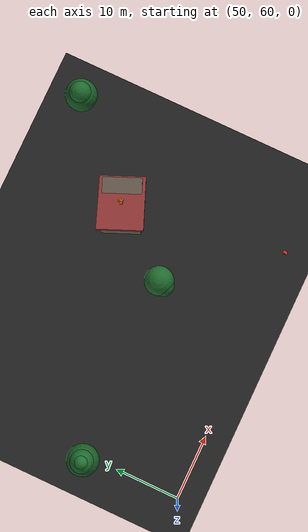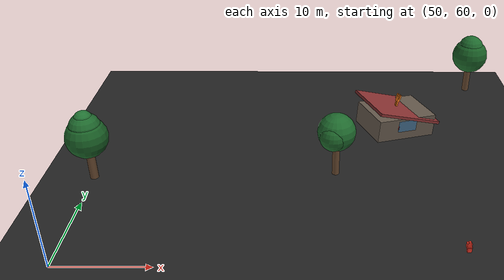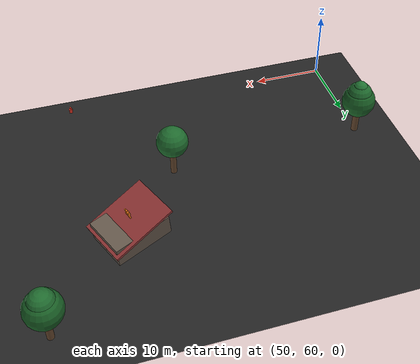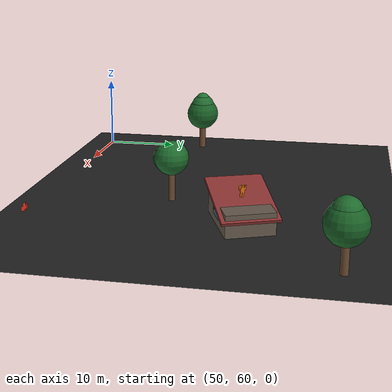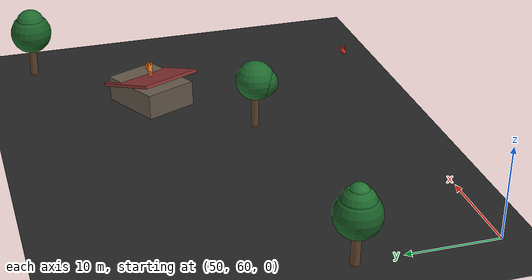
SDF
<sdf version="1.9">
 <world name="disaster_night_world">
  <model name="ground_plane">
   <static>true</static>
   <pose>100 50 0 0 0 0</pose>
   <link name="ground_link">
    <collision name="ground_collision">
     <geometry><plane><normal>0 0 1</normal><size>240 140</size></plane></geometry>
    </collision>
    <visual name="ground_visual">
     <geometry><plane><normal>0 0 1</normal><size>240 140</size></plane></geometry>
     <material><ambient>0.1 0.1 0.1 1.0</ambient><diffuse>0.14 0.14 0.14 1.0</diffuse></material>
    </visual>
   </link>
  </model>
  <model name="submerged_house_north_1">
   <static>true</static>
   <pose>86 86 0.4 0 0.08 0.4</pose>
   <link name="walls">
    <pose>0 0 1.4 0 0 0</pose>
    <visual name="v">
     <geometry><box><size>8 6 2.8</size></box></geometry>
     <material><ambient>0.3 0.25 0.2 1.0</ambient><diffuse>0.4 0.35 0.3 1.0</diffuse></material>
    </visual>
   </link>
   <link name="roof">
    <pose>0 0 3.0 0 0.25 0</pose>
    <visual name="v">
     <geometry><box><size>9 7 0.35</size></box></geometry>
     <material><ambient>0.45 0.15 0.15 1.0</ambient><diffuse>0.55 0.2 0.2 1.0</diffuse></material>
    </visual>
   </link>
   <link name="window">
    <pose>0 -3.05 1.8 0 0 0</pose>
    <visual name="v">
     <geometry><box><size>2.5 0.1 1.4</size></box></geometry>
     <material><ambient>0.2 0.4 0.6 0.7</ambient><diffuse>0.25 0.5 0.7 0.7</diffuse></material>
    </visual>
   </link>
  </model>
  <model name="flank_tree_north_1">
   <static>true</static>
   <pose>78 76 0 0 0 0.6</pose>
   <link name="t">
    <pose>0 0 3.0 0 0 0</pose>
    <visual name="v">
     <geometry><cylinder><radius>0.42</radius><length>6.0</length></cylinder></geometry>
     <material>
      <ambient>0.3 0.2 0.12 1.0</ambient>
      <diffuse>0.4 0.28 0.18 1.0</diffuse>
      <pbr>
       <metal>
        <albedo_map>materials/textures/bark_diffuse.png</albedo_map>
        <normal_map>materials/textures/bark_normal.png</normal_map>
        <roughness>0.8</roughness>
       </metal>
      </pbr>
     </material>
    </visual>
   </link>
   <link name="b">
    <pose>0.7 0.4 4.5 0 0.6 0.4</pose>
    <visual name="v">
     <geometry><cylinder><radius>0.22</radius><length>2.2</length></cylinder></geometry>
     <material>
      <ambient>0.3 0.2 0.12 1.0</ambient>
      <diffuse>0.4 0.28 0.18 1.0</diffuse>
      <pbr>
       <metal>
        <albedo_map>materials/textures/bark_diffuse.png</albedo_map>
        <normal_map>materials/textures/bark_normal.png</normal_map>
        <roughness>0.8</roughness>
       </metal>
      </pbr>
     </material>
    </visual>
   </link>
   <link name="c1">
    <pose>0 0 5.6 0 0 0</pose>
    <visual name="v">
     <geometry><sphere><radius>2.2</radius></sphere></geometry>
     <material>
      <ambient>0.08 0.28 0.12 1.0</ambient>
      <diffuse>0.12 0.42 0.18 1.0</diffuse>
      <pbr>
       <metal>
        <albedo_map>materials/textures/leaves_diffuse.png</albedo_map>
        <normal_map>materials/textures/leaves_normal.png</normal_map>
        <roughness>0.6</roughness>
       </metal>
      </pbr>
     </material>
    </visual>
   </link>
   <link name="c2">
    <pose>-0.8 -0.5 5.4 0 0 0</pose>
    <visual name="v">
     <geometry><sphere><radius>1.6</radius></sphere></geometry>
     <material>
      <ambient>0.07 0.25 0.11 1.0</ambient>
      <diffuse>0.11 0.39 0.16 1.0</diffuse>
      <pbr>
       <metal>
        <albedo_map>materials/textures/leaves_diffuse.png</albedo_map>
        <normal_map>materials/textures/leaves_normal.png</normal_map>
        <roughness>0.6</roughness>
       </metal>
      </pbr>
     </material>
    </visual>
   </link>
  </model>
  <model name="flank_tree_north_2">
   <static>true</static>
   <pose>98 98 0 0 0 -0.7</pose>
   <link name="t">
    <pose>0 0 3.2 0 0 0</pose>
    <visual name="v">
     <geometry><cylinder><radius>0.45</radius><length>6.4</length></cylinder></geometry>
     <material>
      <ambient>0.3 0.2 0.12 1.0</ambient>
      <diffuse>0.4 0.28 0.18 1.0</diffuse>
      <pbr>
       <metal>
        <albedo_map>materials/textures/bark_diffuse.png</albedo_map>
        <normal_map>materials/textures/bark_normal.png</normal_map>
        <roughness>0.8</roughness>
       </metal>
      </pbr>
     </material>
    </visual>
   </link>
   <link name="c1">
    <pose>0 0 5.4 0 0 0</pose>
    <visual name="v">
     <geometry><sphere><radius>2.4</radius></sphere></geometry>
     <material>
      <ambient>0.06 0.24 0.10 1.0</ambient>
      <diffuse>0.10 0.38 0.15 1.0</diffuse>
      <pbr>
       <metal>
        <albedo_map>materials/textures/leaves_diffuse.png</albedo_map>
        <normal_map>materials/textures/leaves_normal.png</normal_map>
        <roughness>0.6</roughness>
       </metal>
      </pbr>
     </material>
    </visual>
   </link>
   <link name="c2">
    <pose>0 0 6.6 0 0 0</pose>
    <visual name="v">
     <geometry><sphere><radius>1.7</radius></sphere></geometry>
     <material>
      <ambient>0.08 0.28 0.12 1.0</ambient>
      <diffuse>0.12 0.42 0.18 1.0</diffuse>
      <pbr>
       <metal>
        <albedo_map>materials/textures/leaves_diffuse.png</albedo_map>
        <normal_map>materials/textures/leaves_normal.png</normal_map>
        <roughness>0.6</roughness>
       </metal>
      </pbr>
     </material>
    </visual>
   </link>
  </model>
  <model name="flood_tree_2">
   <static>true</static>
   <pose>50 75 0 0 0 -0.8</pose>
   <link name="trunk">
    <pose>0 0 3.4 0 0 0</pose>
    <visual name="v">
     <geometry><cylinder><radius>0.48</radius><length>6.8</length></cylinder></geometry>
     <material>
      <ambient>0.3 0.2 0.12 1.0</ambient>
      <diffuse>0.4 0.28 0.18 1.0</diffuse>
      <pbr>
       <metal>
        <albedo_map>materials/textures/bark_diffuse.png</albedo_map>
        <normal_map>materials/textures/bark_normal.png</normal_map>
        <roughness>0.8</roughness>
       </metal>
      </pbr>
     </material>
    </visual>
   </link>
   <link name="branch">
    <pose>-0.6 0.5 4.8 0 -0.6 0.8</pose>
    <visual name="v">
     <geometry><cylinder><radius>0.22</radius><length>2.0</length></cylinder></geometry>
     <material>
      <ambient>0.3 0.2 0.12 1.0</ambient>
      <diffuse>0.4 0.28 0.18 1.0</diffuse>
      <pbr>
       <metal>
        <albedo_map>materials/textures/bark_diffuse.png</albedo_map>
        <normal_map>materials/textures/bark_normal.png</normal_map>
        <roughness>0.8</roughness>
       </metal>
      </pbr>
     </material>
    </visual>
   </link>
   <link name="canopy_tier1">
    <pose>0 0 5.4 0 0 0</pose>
    <visual name="v">
     <geometry><sphere><radius>2.4</radius></sphere></geometry>
     <material>
      <ambient>0.06 0.24 0.10 1.0</ambient>
      <diffuse>0.10 0.38 0.15 1.0</diffuse>
      <pbr>
       <metal>
        <albedo_map>materials/textures/leaves_diffuse.png</albedo_map>
        <normal_map>materials/textures/leaves_normal.png</normal_map>
        <roughness>0.6</roughness>
       </metal>
      </pbr>
     </material>
    </visual>
   </link>
   <link name="canopy_tier2">
    <pose>0 0 6.6 0 0 0</pose>
    <visual name="v">
     <geometry><sphere><radius>1.8</radius></sphere></geometry>
     <material>
      <ambient>0.08 0.28 0.12 1.0</ambient>
      <diffuse>0.12 0.42 0.18 1.0</diffuse>
      <pbr>
       <metal>
        <albedo_map>materials/textures/leaves_diffuse.png</albedo_map>
        <normal_map>materials/textures/leaves_normal.png</normal_map>
        <roughness>0.6</roughness>
       </metal>
      </pbr>
     </material>
    </visual>
   </link>
   <link name="canopy_top">
    <pose>0 0 7.6 0 0 0</pose>
    <visual name="v">
     <geometry><sphere><radius>1.1</radius></sphere></geometry>
     <material>
      <ambient>0.09 0.30 0.14 1.0</ambient>
      <diffuse>0.13 0.45 0.20 1.0</diffuse>
      <pbr>
       <metal>
        <albedo_map>materials/textures/leaves_diffuse.png</albedo_map>
        <normal_map>materials/textures/leaves_normal.png</normal_map>
        <roughness>0.6</roughness>
       </metal>
      </pbr>
     </material>
    </visual>
   </link>
  </model>
  <include>
   <uri>model://human_sitting_clinging</uri>
   <name>survivor_02_tree2</name>
   <pose>49.4 75.5 4.8 0 0 -0.8</pose>
  </include>
  <include>
   <uri>model://human_sitting_clinging</uri>
   <name>survivor_19_guardrail_north</name>
   <pose>90.0 61.0 1.45 0 0 -1.57</pose>
  </include>
  <include>
   <uri>model://human_standing_waving</uri>
   <name>survivor_b_n_house3_roof</name>
   <pose>86.0 86.0 3.4 0 0.25 0.4</pose>
  </include>
  <include>
   <uri>model://human_sitting_clinging</uri>
   <name>survivor_b_n_house3_window</name>
   <pose>86.0 83.2 1.8 0 0 -1.57</pose>
  </include>
  <include>
   <uri>model://human_sitting_clinging</uri>
   <name>survivor_b_n_tree1</name>
   <pose>78.6 76.4 4.8 0 0 0.6</pose>
  </include>
 </world>
</sdf>
